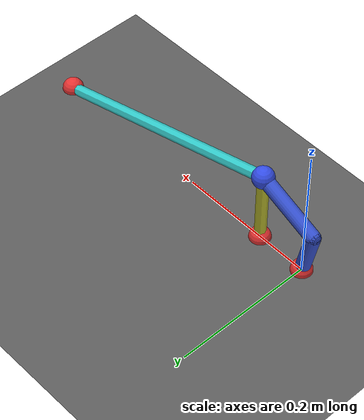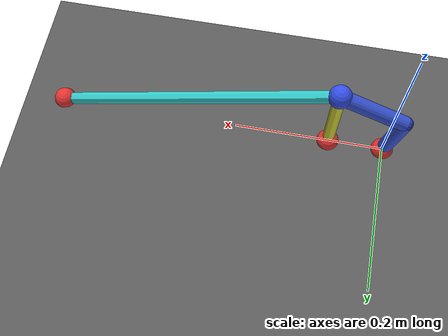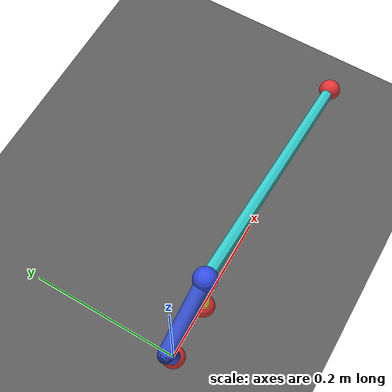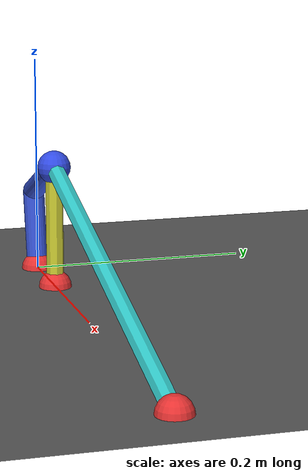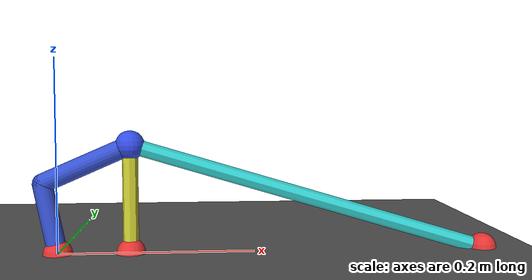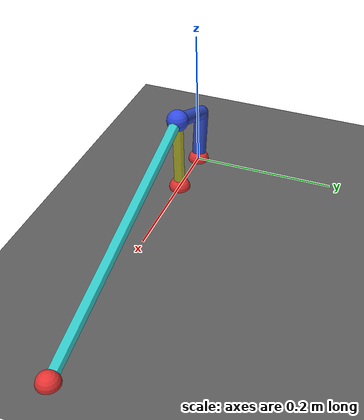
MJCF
<?xml version="1.0" encoding="UTF-8"?>
<mujoco model="optimus_knee_task4">
    <compiler angle="radian" inertiafromgeom="true"/>

    <option integrator="Euler" timestep="0.001" gravity="0 0 0"/>

    <visual>
        <map znear="0.01" zfar="50"/>
        <rgba haze="0.15 0.25 0.35 1"/>
    </visual>

    <asset>
        <texture type="skybox" builtin="gradient"
                 rgb1="0.3 0.5 0.7" rgb2="0 0 0"
                 width="320" height="320"/>
        <texture name="grid" type="2d" builtin="checker"
                 rgb1="0.1 0.1 0.1" rgb2="0.6 0.6 0.6"
                 width="300" height="300"/>
        <material name="grid" texture="grid"
                  texrepeat="10 10" reflectance="0.2"/>
    </asset>

    <worldbody>
        <light pos="0 0 2" dir="0 0 -1" diffuse="1 1 1"/>
        <geom name="ground" type="plane" size="0.5 0.5 0.1" material="grid"/>

        <site name="site_O" pos="0 0 0"       size="0.015" rgba="0.9 0.2 0.2 1"/>
        <site name="site_C" pos="0.074 0 0"   size="0.015" rgba="0.9 0.2 0.2 1"/>
        <site name="site_D" pos="0.444 0 0"   size="0.015" rgba="0.9 0.2 0.2 1"/>

        <body name="L1_body" pos="0 0 0">
            <inertial pos="0 0 0.037" mass="0.2"
                      diaginertia="0.01 0.01 0.001"/>
            <joint name="J_O" type="hinge" axis="0 1 0"
                   limited="true" range="-1e-6 1e-6" damping="0.5"/>
            <geom name="G_L1" type="capsule"
                  fromto="0 0 0   -0.0142133 0 0.0726222"
                  size="0.01" rgba="0.21 0.32 0.82 0.9"/>

            <body name="L2_body" pos="-0.0142133 0 0.0726222">
                <inertial pos="0 0 0.0481" mass="0.2"
                          diaginertia="0.01 0.01 0.001"/>
                <joint name="J_A" type="hinge" axis="0 1 0"
                       limited="true" range="-2.5 2.5" damping="0.5"/>
                <geom name="G_L2" type="capsule"
                      fromto="0 0 0   0.0882133 0 0.0383778"
                      size="0.01" rgba="0.21 0.32 0.82 0.9"/>

                <body name="B_body" pos="0.0882133 0 0.0383778">
                    <site name="site_B" pos="0 0 0"
                          size="0.015" rgba="0.2 0.3 0.9 1"/>
                </body>
            </body>
        </body>
    </worldbody>

    <tendon>
        <spatial name="tendon_BC" width="0.008"
                 rgba="0.8 0.8 0.2 1"
                 stiffness="0.0"
                 damping="0.0"
                 springlength="0.111">
            <site site="site_B"/>
            <site site="site_C"/>
        </spatial>

        <spatial name="tendon_BD" width="0.008"
                 rgba="0.2 0.8 0.8 1"
                 limited="false">
            <site site="site_B"/>
            <site site="site_D"/>
        </spatial>
    </tendon>

    <actuator>
        <motor name="q1_motor" joint="J_A" gear="1"
               ctrllimited="true" ctrlrange="-20 20"/>
    </actuator>

    <sensor>
        <jointpos name="q1_pos" joint="J_A"/>
        <jointvel name="q1_vel" joint="J_A"/>
    </sensor>

</mujoco>
